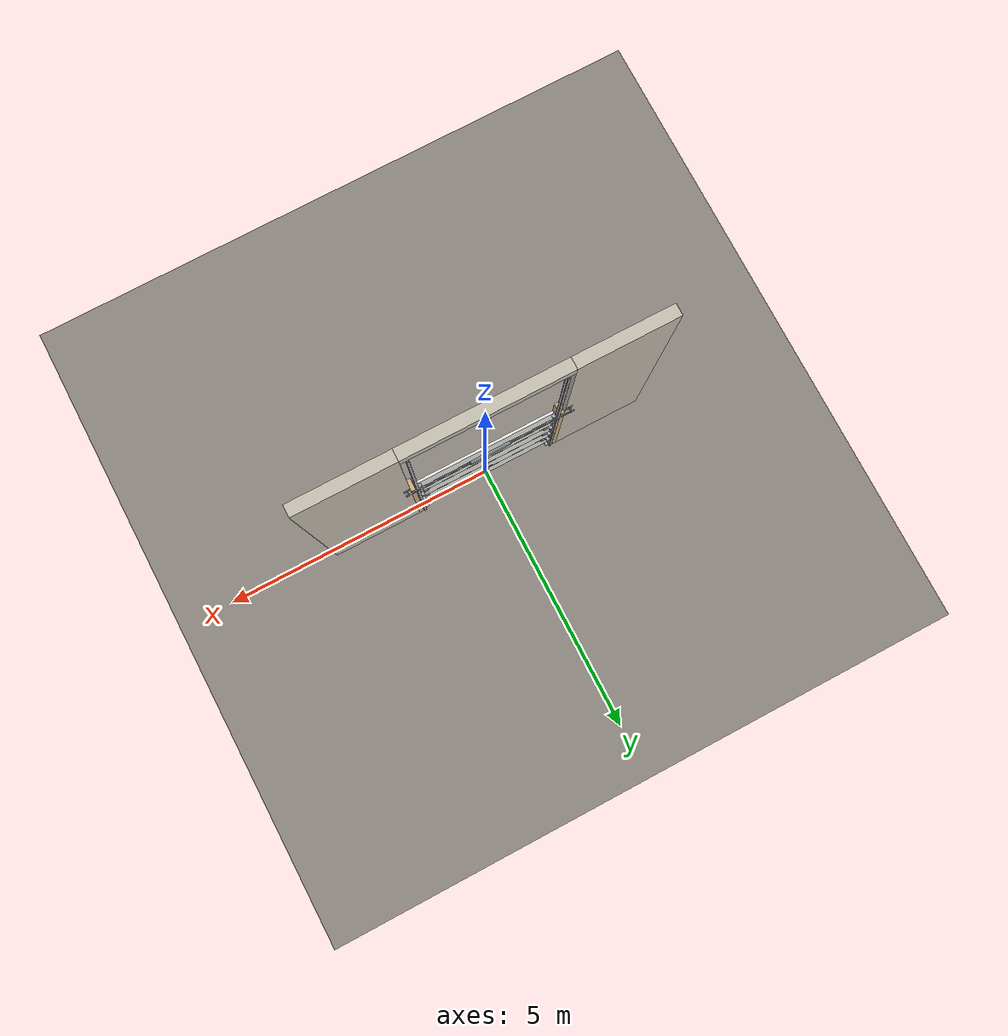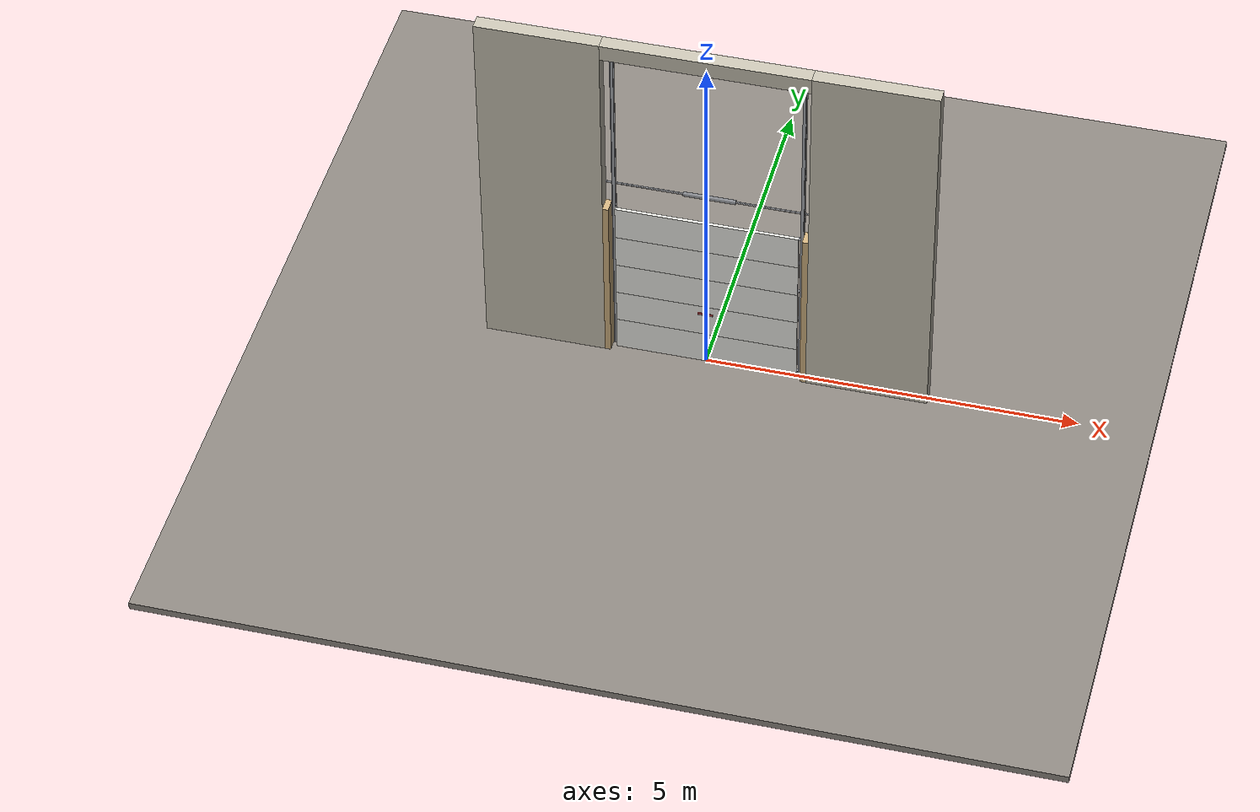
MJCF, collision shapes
<?xml version="1.0" ?>
<mujoco model="db0148_garage_sectional_full">
  <compiler angle="radian" meshdir="../../hardware" texturedir="../../textures" autolimits="true" inertiafromgeom="false"/>
  <option timestep="0.002" integrator="implicitfast" cone="elliptic" impratio="10" noslip_iterations="3">
    <flag multiccd="enable"/>
  </option>
  <size memory="16M"/>
  <default>
    <geom condim="4" solref="0.005 1" solimp="0.95 0.99 0.001"/>
    <joint solreflimit="0.005 1" solimplimit="0.95 0.99 0.001"/>
    <tendon solreflimit="0.005 1"/>
    <equality solref="0.002 1"/>
  </default>
  <visual>
    <headlight ambient="0.4 0.4 0.4" diffuse="0.7 0.7 0.7" specular="0.2 0.2 0.2"/>
    <quality shadowsize="4096"/>
    <map znear="0.01" zfar="60"/>
  </visual>
  <asset>
    <mesh name="pull_bdc5e965ab" file="pull_bdc5e965ab.obj"/>
    <material name="mat_floor" rgba="0.55 0.53 0.5 1" specular="0.2" shininess="0.15" reflectance="0"/>
    <material name="mat_wall" rgba="0.78 0.76 0.7 1" specular="0.2" shininess="0.1" reflectance="0"/>
    <material name="mat_frame" rgba="0.82 0.7 0.5 1" specular="0.2" shininess="0.45" reflectance="0"/>
    <material name="mat_track" rgba="0.65 0.66 0.68 1" specular="0.74" shininess="0.5" reflectance="0.36"/>
    <material name="mat_section_0" rgba="0.93 0.93 0.91 1" specular="0.23" shininess="0.48" reflectance="0.02"/>
    <material name="mat_section_1" rgba="0.93 0.93 0.91 1" specular="0.23" shininess="0.48" reflectance="0.02"/>
    <material name="mat_hinge_line" rgba="0.2 0.2 0.2 1" specular="0.2" shininess="0.3" reflectance="0"/>
    <material name="mat_section_2" rgba="0.93 0.93 0.91 1" specular="0.23" shininess="0.48" reflectance="0.02"/>
    <material name="mat_section_3" rgba="0.93 0.93 0.91 1" specular="0.23" shininess="0.48" reflectance="0.02"/>
    <material name="mat_section_4" rgba="0.93 0.93 0.91 1" specular="0.23" shininess="0.48" reflectance="0.02"/>
    <material name="mat_spring" rgba="0.55 0.56 0.58 1" specular="0.8" shininess="0.55" reflectance="0.4"/>
    <material name="mat_op_black_matte_metal" rgba="0.05 0.05 0.05 1" specular="0.38" shininess="0.3" reflectance="0.12"/>
    <texture name="skybox" type="skybox" builtin="gradient" rgb1="0.6 0.7 0.85" rgb2="0.9 0.92 0.95" width="256" height="256"/>
  </asset>
  <worldbody>
    <light name="sun" pos="1.5 -2.5 4" dir="-0.3 0.5 -0.8" directional="true" diffuse="0.8 0.8 0.8" specular="0.3 0.3 0.3" castshadow="true"/>
    <light name="fill" pos="-1.5 2.5 3" dir="0.3 -0.5 -0.7" directional="true" diffuse="0.35 0.35 0.4" castshadow="false"/>
    <camera name="robot_view" pos="0 -2.959375 2.073625" xyaxes="1 0 0 0 0.26963 0.962964" fovy="52"/>
    <camera name="far_view" pos="0 2.959375 2.073625" xyaxes="-1 0 0 0 -0.26963 0.962964" fovy="52"/>
    <camera name="iso" pos="2.249125 -2.485875 2.547125" xyaxes="0.741536 0.670913 0 -0.242917 0.268487 0.932151" fovy="46"/>
    <camera name="detail_handle" pos="0.25 -1.1725 1.25" xyaxes="0.975133 0.221621 0 -0.065674 0.288965 0.955084" fovy="38"/>
    <geom name="floor" type="box" size="6 6 0.05" pos="0 0 -0.05" material="mat_floor" group="0" contype="1" conaffinity="1" friction="0.8 0.005 0.0001" density="2400"/>
    <geom name="wall_left" type="box" size="0.8175 0.1 2.615" pos="-2.1825 0 2.615" material="mat_wall" group="0" contype="1" conaffinity="1" friction="0.6 0.005 0.0001" density="800"/>
    <geom name="wall_right" type="box" size="0.8175 0.1 2.615" pos="2.1825 0 2.615" material="mat_wall" group="0" contype="1" conaffinity="1" friction="0.6 0.005 0.0001" density="800"/>
    <geom name="wall_header" type="box" size="1.365 0.1 0.11" pos="0 0 5.12" material="mat_wall" group="0" contype="1" conaffinity="1" friction="0.6 0.005 0.0001" density="800"/>
    <geom name="garage_jamb_l" type="box" size="0.04 0.1 1.245" pos="-1.325 0 1.245" material="mat_frame" group="0" contype="1" conaffinity="1" friction="0.6 0.005 0.0001" density="400"/>
    <geom name="garage_jamb_r" type="box" size="0.04 0.1 1.245" pos="1.325 0 1.245" material="mat_frame" group="0" contype="1" conaffinity="1" friction="0.6 0.005 0.0001" density="400"/>
    <geom name="track_l" type="box" size="0.004 0.033 2.465" pos="-1.27 0.0825 2.465" material="mat_track" group="0" contype="1" conaffinity="1" friction="0.6 0.005 0.0001" density="7850"/>
    <geom name="track_l_flange_n" type="box" size="0.022 0.004 2.465" pos="-1.252 0.0535 2.465" material="mat_track" group="0" contype="1" conaffinity="1" friction="0.6 0.005 0.0001" density="7850"/>
    <geom name="track_l_flange_p" type="box" size="0.022 0.004 2.465" pos="-1.252 0.1115 2.465" material="mat_track" group="0" contype="1" conaffinity="1" friction="0.6 0.005 0.0001" density="7850"/>
    <geom name="track_r" type="box" size="0.004 0.033 2.465" pos="1.27 0.0825 2.465" material="mat_track" group="0" contype="1" conaffinity="1" friction="0.6 0.005 0.0001" density="7850"/>
    <geom name="track_r_flange_n" type="box" size="0.022 0.004 2.465" pos="1.252 0.0535 2.465" material="mat_track" group="0" contype="1" conaffinity="1" friction="0.6 0.005 0.0001" density="7850"/>
    <geom name="track_r_flange_p" type="box" size="0.022 0.004 2.465" pos="1.252 0.1115 2.465" material="mat_track" group="0" contype="1" conaffinity="1" friction="0.6 0.005 0.0001" density="7850"/>
    <geom name="torsion_shaft" type="cylinder" size="0.013 1.475" pos="0 0.17 2.74" quat="0.707107 0 0.707107 0" material="mat_track" group="0" contype="1" conaffinity="1" friction="0.6 0.005 0.0001" density="7850"/>
    <geom name="torsion_spring" type="cylinder" size="0.03 0.35" pos="0 0.17 2.74" quat="0.707107 0 0.707107 0" material="mat_spring" group="1" contype="0" conaffinity="0" density="7850"/>
    <geom name="torsion_bearing_plate_l" type="box" size="0.055 0.004 0.055" pos="-1.425 0.104 2.74" material="mat_track" group="1" contype="0" conaffinity="0" density="7850"/>
    <geom name="torsion_bearing_arm_l" type="box" size="0.008 0.049 0.03" pos="-1.425 0.139 2.74" material="mat_track" group="1" contype="0" conaffinity="0" density="7850"/>
    <geom name="torsion_bearing_plate_r" type="box" size="0.055 0.004 0.055" pos="1.425 0.104 2.74" material="mat_track" group="1" contype="0" conaffinity="0" density="7850"/>
    <geom name="torsion_bearing_arm_r" type="box" size="0.008 0.049 0.03" pos="1.425 0.139 2.74" material="mat_track" group="1" contype="0" conaffinity="0" density="7850"/>
    <site name="approach_point" pos="0 -2 0" quat="1 0 0 0" size="0.05" rgba="0.2 0.9 0.2 0.5" group="4"/>
    <site name="goal_point" pos="0 2 0" quat="1 0 0 0" size="0.05" rgba="0.2 0.9 0.2 0.5" group="4"/>
    <site name="door_plane_center" pos="0 0 1.245" quat="1 0 0 0" size="0.02" rgba="0.2 0.9 0.2 0.5" group="4"/>
    <body name="door" pos="0 0 0">
      <inertial pos="0 0.011864 1.225795" mass="65.09656" quat="0.707093 -0.70712 0 0" diaginertia="30.86931999 41.850756972 72.630562979"/>
      <joint name="door_slide" type="slide" axis="0 0 1" limited="true" range="0 2.39" damping="5.254828" frictionloss="63.837918" stiffness="76.150719" springref="7.966667" armature="0.5"/>
      <geom name="section_0_slab" type="box" size="1.22 0.0225 0.244" pos="0 0 0.254" material="mat_section_0" group="0" contype="1" conaffinity="1" friction="0.4 0.005 0.0001" density="1"/>
      <geom name="section_1_slab" type="box" size="1.22 0.0225 0.244" pos="0 0 0.742" material="mat_section_1" group="0" contype="1" conaffinity="1" friction="0.4 0.005 0.0001" density="1"/>
      <geom name="section_hinge_line_1" type="box" size="1.2 0.001 0.004" pos="0 0.0235 0.498" material="mat_hinge_line" group="1" contype="0" conaffinity="0" density="1"/>
      <geom name="section_hinge_1_132" type="box" size="0.04 0.01 0.05" pos="-1.12 0.0325 0.498" material="mat_track" group="1" contype="0" conaffinity="0" density="7850"/>
      <geom name="section_hinge_1_244" type="box" size="0.04 0.01 0.05" pos="0 0.0325 0.498" material="mat_track" group="1" contype="0" conaffinity="0" density="7850"/>
      <geom name="section_hinge_1_355" type="box" size="0.04 0.01 0.05" pos="1.12 0.0325 0.498" material="mat_track" group="1" contype="0" conaffinity="0" density="7850"/>
      <geom name="section_2_slab" type="box" size="1.22 0.0225 0.244" pos="0 0 1.23" material="mat_section_2" group="0" contype="1" conaffinity="1" friction="0.4 0.005 0.0001" density="1"/>
      <geom name="section_hinge_line_2" type="box" size="1.2 0.001 0.004" pos="0 0.0235 0.986" material="mat_hinge_line" group="1" contype="0" conaffinity="0" density="1"/>
      <geom name="section_hinge_2_132" type="box" size="0.04 0.01 0.05" pos="-1.12 0.0325 0.986" material="mat_track" group="1" contype="0" conaffinity="0" density="7850"/>
      <geom name="section_hinge_2_244" type="box" size="0.04 0.01 0.05" pos="0 0.0325 0.986" material="mat_track" group="1" contype="0" conaffinity="0" density="7850"/>
      <geom name="section_hinge_2_355" type="box" size="0.04 0.01 0.05" pos="1.12 0.0325 0.986" material="mat_track" group="1" contype="0" conaffinity="0" density="7850"/>
      <geom name="section_3_slab" type="box" size="1.22 0.0225 0.244" pos="0 0 1.718" material="mat_section_3" group="0" contype="1" conaffinity="1" friction="0.4 0.005 0.0001" density="1"/>
      <geom name="section_hinge_line_3" type="box" size="1.2 0.001 0.004" pos="0 0.0235 1.474" material="mat_hinge_line" group="1" contype="0" conaffinity="0" density="1"/>
      <geom name="section_hinge_3_132" type="box" size="0.04 0.01 0.05" pos="-1.12 0.0325 1.474" material="mat_track" group="1" contype="0" conaffinity="0" density="7850"/>
      <geom name="section_hinge_3_244" type="box" size="0.04 0.01 0.05" pos="0 0.0325 1.474" material="mat_track" group="1" contype="0" conaffinity="0" density="7850"/>
      <geom name="section_hinge_3_355" type="box" size="0.04 0.01 0.05" pos="1.12 0.0325 1.474" material="mat_track" group="1" contype="0" conaffinity="0" density="7850"/>
      <geom name="section_4_slab" type="box" size="1.22 0.0225 0.244" pos="0 0 2.206" material="mat_section_4" group="0" contype="1" conaffinity="1" friction="0.4 0.005 0.0001" density="1"/>
      <geom name="section_hinge_line_4" type="box" size="1.2 0.001 0.004" pos="0 0.0235 1.962" material="mat_hinge_line" group="1" contype="0" conaffinity="0" density="1"/>
      <geom name="section_hinge_4_132" type="box" size="0.04 0.01 0.05" pos="-1.12 0.0325 1.962" material="mat_track" group="1" contype="0" conaffinity="0" density="7850"/>
      <geom name="section_hinge_4_244" type="box" size="0.04 0.01 0.05" pos="0 0.0325 1.962" material="mat_track" group="1" contype="0" conaffinity="0" density="7850"/>
      <geom name="section_hinge_4_355" type="box" size="0.04 0.01 0.05" pos="1.12 0.0325 1.962" material="mat_track" group="1" contype="0" conaffinity="0" density="7850"/>
      <geom name="roller_l_0" type="cylinder" size="0.025 0.01" pos="-1.25 0.0825 0.04" quat="0.707107 0 0.707107 0" material="mat_track" group="1" contype="0" conaffinity="0" density="7850"/>
      <geom name="roller_stem_l_0" type="cylinder" size="0.006 0.027" pos="-1.225 0.0825 0.04" quat="0.707107 0 0.707107 0" material="mat_track" group="1" contype="0" conaffinity="0" density="7850"/>
      <geom name="roller_arm_l_0" type="box" size="0.03 0.03 0.006" pos="-1.2 0.0525 0.04" material="mat_track" group="1" contype="0" conaffinity="0" density="7850"/>
      <geom name="roller_l_1" type="cylinder" size="0.025 0.01" pos="-1.25 0.0825 0.498" quat="0.707107 0 0.707107 0" material="mat_track" group="1" contype="0" conaffinity="0" density="7850"/>
      <geom name="roller_stem_l_1" type="cylinder" size="0.006 0.027" pos="-1.225 0.0825 0.498" quat="0.707107 0 0.707107 0" material="mat_track" group="1" contype="0" conaffinity="0" density="7850"/>
      <geom name="roller_arm_l_1" type="box" size="0.03 0.03 0.006" pos="-1.2 0.0525 0.498" material="mat_track" group="1" contype="0" conaffinity="0" density="7850"/>
      <geom name="roller_l_2" type="cylinder" size="0.025 0.01" pos="-1.25 0.0825 0.986" quat="0.707107 0 0.707107 0" material="mat_track" group="1" contype="0" conaffinity="0" density="7850"/>
      <geom name="roller_stem_l_2" type="cylinder" size="0.006 0.027" pos="-1.225 0.0825 0.986" quat="0.707107 0 0.707107 0" material="mat_track" group="1" contype="0" conaffinity="0" density="7850"/>
      <geom name="roller_arm_l_2" type="box" size="0.03 0.03 0.006" pos="-1.2 0.0525 0.986" material="mat_track" group="1" contype="0" conaffinity="0" density="7850"/>
      <geom name="roller_l_3" type="cylinder" size="0.025 0.01" pos="-1.25 0.0825 1.474" quat="0.707107 0 0.707107 0" material="mat_track" group="1" contype="0" conaffinity="0" density="7850"/>
      <geom name="roller_stem_l_3" type="cylinder" size="0.006 0.027" pos="-1.225 0.0825 1.474" quat="0.707107 0 0.707107 0" material="mat_track" group="1" contype="0" conaffinity="0" density="7850"/>
      <geom name="roller_arm_l_3" type="box" size="0.03 0.03 0.006" pos="-1.2 0.0525 1.474" material="mat_track" group="1" contype="0" conaffinity="0" density="7850"/>
      <geom name="roller_l_4" type="cylinder" size="0.025 0.01" pos="-1.25 0.0825 1.962" quat="0.707107 0 0.707107 0" material="mat_track" group="1" contype="0" conaffinity="0" density="7850"/>
      <geom name="roller_stem_l_4" type="cylinder" size="0.006 0.027" pos="-1.225 0.0825 1.962" quat="0.707107 0 0.707107 0" material="mat_track" group="1" contype="0" conaffinity="0" density="7850"/>
      <geom name="roller_arm_l_4" type="box" size="0.03 0.03 0.006" pos="-1.2 0.0525 1.962" material="mat_track" group="1" contype="0" conaffinity="0" density="7850"/>
      <geom name="roller_l_5" type="cylinder" size="0.025 0.01" pos="-1.25 0.0825 2.39" quat="0.707107 0 0.707107 0" material="mat_track" group="1" contype="0" conaffinity="0" density="7850"/>
      <geom name="roller_stem_l_5" type="cylinder" size="0.006 0.027" pos="-1.225 0.0825 2.39" quat="0.707107 0 0.707107 0" material="mat_track" group="1" contype="0" conaffinity="0" density="7850"/>
      <geom name="roller_arm_l_5" type="box" size="0.03 0.03 0.006" pos="-1.2 0.0525 2.39" material="mat_track" group="1" contype="0" conaffinity="0" density="7850"/>
      <geom name="roller_r_0" type="cylinder" size="0.025 0.01" pos="1.25 0.0825 0.04" quat="0.707107 0 0.707107 0" material="mat_track" group="1" contype="0" conaffinity="0" density="7850"/>
      <geom name="roller_stem_r_0" type="cylinder" size="0.006 0.027" pos="1.225 0.0825 0.04" quat="0.707107 0 0.707107 0" material="mat_track" group="1" contype="0" conaffinity="0" density="7850"/>
      <geom name="roller_arm_r_0" type="box" size="0.03 0.03 0.006" pos="1.2 0.0525 0.04" material="mat_track" group="1" contype="0" conaffinity="0" density="7850"/>
      <geom name="roller_r_1" type="cylinder" size="0.025 0.01" pos="1.25 0.0825 0.498" quat="0.707107 0 0.707107 0" material="mat_track" group="1" contype="0" conaffinity="0" density="7850"/>
      <geom name="roller_stem_r_1" type="cylinder" size="0.006 0.027" pos="1.225 0.0825 0.498" quat="0.707107 0 0.707107 0" material="mat_track" group="1" contype="0" conaffinity="0" density="7850"/>
      <geom name="roller_arm_r_1" type="box" size="0.03 0.03 0.006" pos="1.2 0.0525 0.498" material="mat_track" group="1" contype="0" conaffinity="0" density="7850"/>
      <geom name="roller_r_2" type="cylinder" size="0.025 0.01" pos="1.25 0.0825 0.986" quat="0.707107 0 0.707107 0" material="mat_track" group="1" contype="0" conaffinity="0" density="7850"/>
      <geom name="roller_stem_r_2" type="cylinder" size="0.006 0.027" pos="1.225 0.0825 0.986" quat="0.707107 0 0.707107 0" material="mat_track" group="1" contype="0" conaffinity="0" density="7850"/>
      <geom name="roller_arm_r_2" type="box" size="0.03 0.03 0.006" pos="1.2 0.0525 0.986" material="mat_track" group="1" contype="0" conaffinity="0" density="7850"/>
      <geom name="roller_r_3" type="cylinder" size="0.025 0.01" pos="1.25 0.0825 1.474" quat="0.707107 0 0.707107 0" material="mat_track" group="1" contype="0" conaffinity="0" density="7850"/>
      <geom name="roller_stem_r_3" type="cylinder" size="0.006 0.027" pos="1.225 0.0825 1.474" quat="0.707107 0 0.707107 0" material="mat_track" group="1" contype="0" conaffinity="0" density="7850"/>
      <geom name="roller_arm_r_3" type="box" size="0.03 0.03 0.006" pos="1.2 0.0525 1.474" material="mat_track" group="1" contype="0" conaffinity="0" density="7850"/>
      <geom name="roller_r_4" type="cylinder" size="0.025 0.01" pos="1.25 0.0825 1.962" quat="0.707107 0 0.707107 0" material="mat_track" group="1" contype="0" conaffinity="0" density="7850"/>
      <geom name="roller_stem_r_4" type="cylinder" size="0.006 0.027" pos="1.225 0.0825 1.962" quat="0.707107 0 0.707107 0" material="mat_track" group="1" contype="0" conaffinity="0" density="7850"/>
      <geom name="roller_arm_r_4" type="box" size="0.03 0.03 0.006" pos="1.2 0.0525 1.962" material="mat_track" group="1" contype="0" conaffinity="0" density="7850"/>
      <geom name="roller_r_5" type="cylinder" size="0.025 0.01" pos="1.25 0.0825 2.39" quat="0.707107 0 0.707107 0" material="mat_track" group="1" contype="0" conaffinity="0" density="7850"/>
      <geom name="roller_stem_r_5" type="cylinder" size="0.006 0.027" pos="1.225 0.0825 2.39" quat="0.707107 0 0.707107 0" material="mat_track" group="1" contype="0" conaffinity="0" density="7850"/>
      <geom name="roller_arm_r_5" type="box" size="0.03 0.03 0.006" pos="1.2 0.0525 2.39" material="mat_track" group="1" contype="0" conaffinity="0" density="7850"/>
      <geom name="lift_handle_n" type="mesh" mesh="pull_bdc5e965ab" pos="0 -0.0225 0.9" quat="0.707107 0.707107 0 0" material="mat_op_black_matte_metal" group="1" contype="0" conaffinity="0" density="3000"/>
      <geom name="lift_handle_col_n" type="box" size="0.1 0.006 0.015" pos="0 -0.0725 0.9" material="mat_op_black_matte_metal" group="3" contype="1" conaffinity="1" rgba="0.8 0.3 0.3 0.25" friction="0.6 0.005 0.0001" density="3000"/>
      <geom name="lift_handle_p" type="mesh" mesh="pull_bdc5e965ab" pos="0 0.0225 0.9" quat="-0.707107 0.707107 0 0" material="mat_op_black_matte_metal" group="1" contype="0" conaffinity="0" density="3000"/>
      <geom name="lift_handle_col_p" type="box" size="0.1 0.006 0.015" pos="0 0.0725 0.9" material="mat_op_black_matte_metal" group="3" contype="1" conaffinity="1" rgba="0.8 0.3 0.3 0.25" friction="0.6 0.005 0.0001" density="3000"/>
      <site name="lift_handle_grip_n" pos="0 -0.0725 0.9" quat="1 0 0 0" size="0.012" rgba="0.2 0.9 0.2 0.5" group="4"/>
      <site name="lift_handle_grip_p" pos="0 0.0725 0.9" quat="1 0 0 0" size="0.012" rgba="0.2 0.9 0.2 0.5" group="4"/>
    </body>
  </worldbody>
  <sensor>
    <jointpos name="door_slide_pos" joint="door_slide"/>
    <jointvel name="door_slide_vel" joint="door_slide"/>
  </sensor>
</mujoco>
